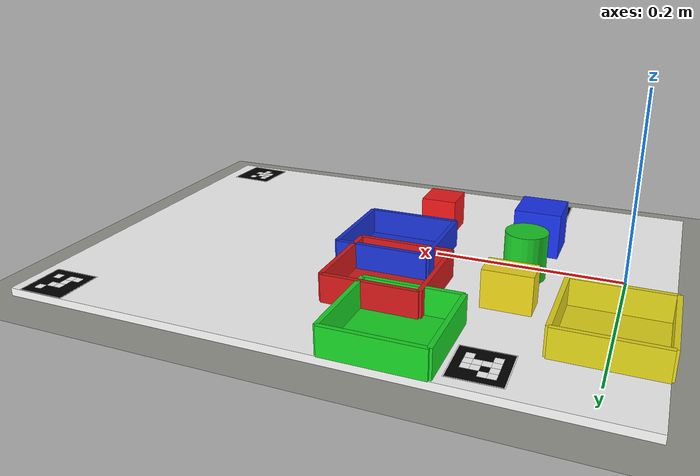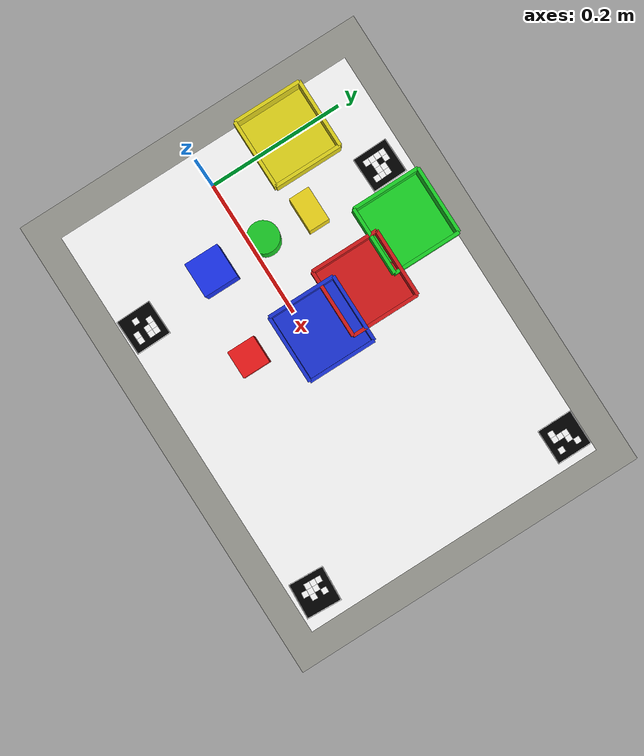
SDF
<?xml version="1.0"?>
<sdf version="1.9">
  <world name="real_table">
    <plugin filename="gz-sim-physics-system" name="gz::sim::systems::Physics" />
    <plugin filename="gz-sim-user-commands-system" name="gz::sim::systems::UserCommands" />
    <plugin filename="gz-sim-scene-broadcaster-system" name="gz::sim::systems::SceneBroadcaster" />
    <!-- The spawned MyCobot URDF loads the shared Sensors system. Loading a
         second instance here creates two Ogre scenes and crashes rendering. -->
    <physics name="default_physics" type="ode">
      <max_step_size>0.001</max_step_size>
      <real_time_factor>1.0</real_time_factor>
    </physics>
    <scene>
      <ambient>0.5 0.5 0.5 1</ambient>
      <background>0.8 0.82 0.85 1</background>
    </scene>
    <light type="directional" name="sun">
      <cast_shadows>true</cast_shadows>
      <pose>0 0 10 0 0 0</pose>
      <diffuse>0.9 0.9 0.85 1</diffuse>
      <specular>0.3 0.3 0.3 1</specular>
      <attenuation>
        <range>1000</range>
        <constant>0.9</constant>
        <linear>0.01</linear>
        <quadratic>0.001</quadratic>
      </attenuation>
      <direction>-0.5 0.3 -0.9</direction>
    </light>
    <light type="directional" name="fill_light">
      <cast_shadows>false</cast_shadows>
      <pose>0 0 8 0 0 0</pose>
      <diffuse>0.4 0.4 0.5 1</diffuse>
      <specular>0.1 0.1 0.1 1</specular>
      <direction>0.5 -0.3 -0.7</direction>
    </light>
    <model name="ground_plane">
      <static>true</static>
      <link name="link">
        <collision name="collision">
          <geometry>
            <plane>
              <normal>0 0 1</normal>
              <size>20 20</size>
            </plane>
          </geometry>
        </collision>
        <visual name="visual">
          <geometry>
            <plane>
              <normal>0 0 1</normal>
              <size>20 20</size>
            </plane>
          </geometry>
          <material>
            <ambient>0.55 0.55 0.52 1</ambient>
            <diffuse>0.6 0.6 0.57 1</diffuse>
          </material>
        </visual>
      </link>
      <pose>0 0 -0.0085 0 0 0</pose>
    </model>
    <!--622 mm along X, 449 mm along Y, 8.5 mm thick. Top Z=0; near edge X=-50 mm.-->
    <model name="table">
      <static>true</static>
      <pose>0.261 0.017 -0.00425 0 0 0</pose>
      <link name="link">
        <visual name="visual">
          <!-- Explicit UVs: the full wood image covers the board once,
               with the grain running along its 622 mm length (+X). -->
          <geometry>
            <mesh>
              <uri>package://mycobot_description/models/wood_table/meshes/tabletop.dae</uri>
            </mesh>
          </geometry>
          <material>
            <ambient>1 1 1 1</ambient>
            <diffuse>1 1 1 1</diffuse>
            <specular>0.08 0.08 0.08 1</specular>
            <pbr>
              <metal>
                <albedo_map>package://mycobot_description/models/wood_table/materials/textures/wood_albedo.png</albedo_map>
                <metalness>0.0</metalness>
                <roughness>0.65</roughness>
              </metal>
            </pbr>
          </material>
        </visual>
        <collision name="collision">
          <geometry>
            <box>
              <size>0.622 0.449 0.0085</size>
            </box>
          </geometry>
          <surface>
            <friction>
              <ode>
                <mu>0.9</mu>
                <mu2>0.9</mu2>
              </ode>
            </friction>
          </surface>
        </collision>
      </link>
    </model>
    <!--Optional physical demo: red cube to red bin, both inside the measured board.-->
    <model name="red_cube">
      <pose>0.22 -0.08 0.020 0 0 0</pose>
      <link name="link">
        <visual name="visual">
          <geometry>
            <box>
              <size>0.04 0.04 0.04</size>
            </box>
          </geometry>
          <material>
            <ambient>0.7 0.05 0.05 1</ambient>
            <diffuse>0.95 0.10 0.10 1</diffuse>
            <specular>0.4 0.1 0.1 1</specular>
          </material>
        </visual>
        <collision name="collision">
          <geometry>
            <box>
              <size>0.04 0.04 0.04</size>
            </box>
          </geometry>
          <surface>
            <friction>
              <ode>
                <mu>1.0</mu>
                <mu2>1.0</mu2>
              </ode>
            </friction>
          </surface>
        </collision>
        <inertial>
          <mass>0.05</mass>
          <inertia>
            <ixx>1.33e-5</ixx>
            <iyy>1.33e-5</iyy>
            <izz>1.33e-5</izz>
            <ixy>0</ixy>
            <ixz>0</ixz>
            <iyz>0</iyz>
          </inertia>
        </inertial>
      </link>
    </model>
    <model name="red_bin">
      <static>true</static>
      <pose>0.22 0.10 0 0 0 0</pose>
      <link name="link">
        <visual name="floor">
          <pose>0 0 0.001 0 0 0</pose>
          <geometry>
            <box>
              <size>0.10 0.10 0.002</size>
            </box>
          </geometry>
          <material>
            <ambient>0.55 0.05 0.05 1</ambient>
            <diffuse>0.85 0.10 0.10 1</diffuse>
          </material>
        </visual>
        <visual name="wn">
          <pose>0 0.05 0.015 0 0 0</pose>
          <geometry>
            <box>
              <size>0.10 0.005 0.03</size>
            </box>
          </geometry>
          <material>
            <ambient>0.55 0.05 0.05 1</ambient>
            <diffuse>0.85 0.10 0.10 1</diffuse>
          </material>
        </visual>
        <visual name="ws">
          <pose>0 -0.05 0.015 0 0 0</pose>
          <geometry>
            <box>
              <size>0.10 0.005 0.03</size>
            </box>
          </geometry>
          <material>
            <ambient>0.55 0.05 0.05 1</ambient>
            <diffuse>0.85 0.10 0.10 1</diffuse>
          </material>
        </visual>
        <visual name="we">
          <pose>0.05 0 0.015 0 0 0</pose>
          <geometry>
            <box>
              <size>0.005 0.10 0.03</size>
            </box>
          </geometry>
          <material>
            <ambient>0.55 0.05 0.05 1</ambient>
            <diffuse>0.85 0.10 0.10 1</diffuse>
          </material>
        </visual>
        <visual name="ww">
          <pose>-0.05 0 0.015 0 0 0</pose>
          <geometry>
            <box>
              <size>0.005 0.10 0.03</size>
            </box>
          </geometry>
          <material>
            <ambient>0.55 0.05 0.05 1</ambient>
            <diffuse>0.85 0.10 0.10 1</diffuse>
          </material>
        </visual>
        <collision name="floor_c">
          <pose>0 0 0.001 0 0 0</pose>
          <geometry>
            <box>
              <size>0.10 0.10 0.002</size>
            </box>
          </geometry>
        </collision>
        <collision name="wn_c">
          <pose>0 0.05 0.015 0 0 0</pose>
          <geometry>
            <box>
              <size>0.10 0.005 0.03</size>
            </box>
          </geometry>
        </collision>
        <collision name="ws_c">
          <pose>0 -0.05 0.015 0 0 0</pose>
          <geometry>
            <box>
              <size>0.10 0.005 0.03</size>
            </box>
          </geometry>
        </collision>
        <collision name="we_c">
          <pose>0.05 0 0.015 0 0 0</pose>
          <geometry>
            <box>
              <size>0.005 0.10 0.03</size>
            </box>
          </geometry>
        </collision>
        <collision name="ww_c">
          <pose>-0.05 0 0.015 0 0 0</pose>
          <geometry>
            <box>
              <size>0.005 0.10 0.03</size>
            </box>
          </geometry>
        </collision>
      </link>
    </model>
    <model name="blue_cube">
      <pose>0.10 -0.06 0.025 0 0 0</pose>
      <link name="link">
        <visual name="visual">
          <geometry>
            <box>
              <size>0.05 0.05 0.05</size>
            </box>
          </geometry>
          <material>
            <ambient>0.05 0.10 0.7 1</ambient>
            <diffuse>0.10 0.20 0.95 1</diffuse>
            <specular>0.1 0.1 0.4 1</specular>
          </material>
        </visual>
        <collision name="collision">
          <geometry>
            <box>
              <size>0.05 0.05 0.05</size>
            </box>
          </geometry>
          <surface>
            <friction>
              <ode>
                <mu>1.0</mu>
                <mu2>1.0</mu2>
              </ode>
            </friction>
          </surface>
        </collision>
        <inertial>
          <mass>0.06</mass>
          <inertia>
            <ixx>2.5e-5</ixx>
            <iyy>2.5e-5</iyy>
            <izz>2.5e-5</izz>
            <ixy>0</ixy>
            <ixz>0</ixz>
            <iyz>0</iyz>
          </inertia>
        </inertial>
      </link>
    </model>
    <model name="green_cylinder">
      <pose>0.10 0.02 0.025 0 0 0</pose>
      <link name="link">
        <visual name="visual">
          <geometry>
            <cylinder>
              <radius>0.022</radius>
              <length>0.05</length>
            </cylinder>
          </geometry>
          <material>
            <ambient>0.05 0.55 0.10 1</ambient>
            <diffuse>0.10 0.80 0.15 1</diffuse>
            <specular>0.1 0.4 0.1 1</specular>
          </material>
        </visual>
        <collision name="collision">
          <geometry>
            <cylinder>
              <radius>0.022</radius>
              <length>0.05</length>
            </cylinder>
          </geometry>
          <surface>
            <friction>
              <ode>
                <mu>1.0</mu>
                <mu2>1.0</mu2>
              </ode>
            </friction>
          </surface>
        </collision>
        <inertial>
          <mass>0.05</mass>
          <inertia>
            <ixx>1.25e-5</ixx>
            <iyy>1.25e-5</iyy>
            <izz>1.21e-5</izz>
            <ixy>0</ixy>
            <ixz>0</ixz>
            <iyz>0</iyz>
          </inertia>
        </inertial>
      </link>
    </model>
    <model name="yellow_box">
      <pose>0.10 0.09 0.020 0 0 0</pose>
      <link name="link">
        <visual name="visual">
          <geometry>
            <box>
              <size>0.05 0.03 0.04</size>
            </box>
          </geometry>
          <material>
            <ambient>0.7 0.6 0.05 1</ambient>
            <diffuse>0.95 0.85 0.10 1</diffuse>
            <specular>0.4 0.4 0.1 1</specular>
          </material>
        </visual>
        <collision name="collision">
          <geometry>
            <box>
              <size>0.05 0.03 0.04</size>
            </box>
          </geometry>
          <surface>
            <friction>
              <ode>
                <mu>1.0</mu>
                <mu2>1.0</mu2>
              </ode>
            </friction>
          </surface>
        </collision>
        <inertial>
          <mass>0.05</mass>
          <inertia>
            <ixx>1.08e-5</ixx>
            <iyy>1.71e-5</iyy>
            <izz>2.04e-5</izz>
            <ixy>0</ixy>
            <ixz>0</ixz>
            <iyz>0</iyz>
          </inertia>
        </inertial>
      </link>
    </model>
    <model name="blue_bin">
      <static>true</static>
      <pose>0.24 0.02 0 0 0 0</pose>
      <link name="link">
        <visual name="floor">
          <pose>0 0 0.001 0 0 0</pose>
          <geometry>
            <box>
              <size>0.10 0.10 0.002</size>
            </box>
          </geometry>
          <material>
            <ambient>0.05 0.10 0.55 1</ambient>
            <diffuse>0.10 0.20 0.85 1</diffuse>
          </material>
        </visual>
        <visual name="wn">
          <pose>0 0.05 0.015 0 0 0</pose>
          <geometry>
            <box>
              <size>0.10 0.005 0.03</size>
            </box>
          </geometry>
          <material>
            <ambient>0.05 0.10 0.55 1</ambient>
            <diffuse>0.10 0.20 0.85 1</diffuse>
          </material>
        </visual>
        <visual name="ws">
          <pose>0 -0.05 0.015 0 0 0</pose>
          <geometry>
            <box>
              <size>0.10 0.005 0.03</size>
            </box>
          </geometry>
          <material>
            <ambient>0.05 0.10 0.55 1</ambient>
            <diffuse>0.10 0.20 0.85 1</diffuse>
          </material>
        </visual>
        <visual name="we">
          <pose>0.05 0 0.015 0 0 0</pose>
          <geometry>
            <box>
              <size>0.005 0.10 0.03</size>
            </box>
          </geometry>
          <material>
            <ambient>0.05 0.10 0.55 1</ambient>
            <diffuse>0.10 0.20 0.85 1</diffuse>
          </material>
        </visual>
        <visual name="ww">
          <pose>-0.05 0 0.015 0 0 0</pose>
          <geometry>
            <box>
              <size>0.005 0.10 0.03</size>
            </box>
          </geometry>
          <material>
            <ambient>0.05 0.10 0.55 1</ambient>
            <diffuse>0.10 0.20 0.85 1</diffuse>
          </material>
        </visual>
        <collision name="floor_c">
          <pose>0 0 0.001 0 0 0</pose>
          <geometry>
            <box>
              <size>0.10 0.10 0.002</size>
            </box>
          </geometry>
        </collision>
        <collision name="wn_c">
          <pose>0 0.05 0.015 0 0 0</pose>
          <geometry>
            <box>
              <size>0.10 0.005 0.03</size>
            </box>
          </geometry>
        </collision>
        <collision name="ws_c">
          <pose>0 -0.05 0.015 0 0 0</pose>
          <geometry>
            <box>
              <size>0.10 0.005 0.03</size>
            </box>
          </geometry>
        </collision>
        <collision name="we_c">
          <pose>0.05 0 0.015 0 0 0</pose>
          <geometry>
            <box>
              <size>0.005 0.10 0.03</size>
            </box>
          </geometry>
        </collision>
        <collision name="ww_c">
          <pose>-0.05 0 0.015 0 0 0</pose>
          <geometry>
            <box>
              <size>0.005 0.10 0.03</size>
            </box>
          </geometry>
        </collision>
      </link>
    </model>
    <model name="green_bin">
      <static>true</static>
      <!-- Repositioned 2026-09-23: original 0.34,-0.04 (r=0.343m) was
           unreachable, see blue_bin's comment above for the same finding. -->
      <pose>0.18 0.19 0 0 0 0</pose>
      <link name="link">
        <visual name="floor">
          <pose>0 0 0.001 0 0 0</pose>
          <geometry>
            <box>
              <size>0.10 0.10 0.002</size>
            </box>
          </geometry>
          <material>
            <ambient>0.05 0.55 0.10 1</ambient>
            <diffuse>0.10 0.85 0.15 1</diffuse>
          </material>
        </visual>
        <visual name="wn">
          <pose>0 0.05 0.015 0 0 0</pose>
          <geometry>
            <box>
              <size>0.10 0.005 0.03</size>
            </box>
          </geometry>
          <material>
            <ambient>0.05 0.55 0.10 1</ambient>
            <diffuse>0.10 0.85 0.15 1</diffuse>
          </material>
        </visual>
        <visual name="ws">
          <pose>0 -0.05 0.015 0 0 0</pose>
          <geometry>
            <box>
              <size>0.10 0.005 0.03</size>
            </box>
          </geometry>
          <material>
            <ambient>0.05 0.55 0.10 1</ambient>
            <diffuse>0.10 0.85 0.15 1</diffuse>
          </material>
        </visual>
        <visual name="we">
          <pose>0.05 0 0.015 0 0 0</pose>
          <geometry>
            <box>
              <size>0.005 0.10 0.03</size>
            </box>
          </geometry>
          <material>
            <ambient>0.05 0.55 0.10 1</ambient>
            <diffuse>0.10 0.85 0.15 1</diffuse>
          </material>
        </visual>
        <visual name="ww">
          <pose>-0.05 0 0.015 0 0 0</pose>
          <geometry>
            <box>
              <size>0.005 0.10 0.03</size>
            </box>
          </geometry>
          <material>
            <ambient>0.05 0.55 0.10 1</ambient>
            <diffuse>0.10 0.85 0.15 1</diffuse>
          </material>
        </visual>
        <collision name="floor_c">
          <pose>0 0 0.001 0 0 0</pose>
          <geometry>
            <box>
              <size>0.10 0.10 0.002</size>
            </box>
          </geometry>
        </collision>
        <collision name="wn_c">
          <pose>0 0.05 0.015 0 0 0</pose>
          <geometry>
            <box>
              <size>0.10 0.005 0.03</size>
            </box>
          </geometry>
        </collision>
        <collision name="ws_c">
          <pose>0 -0.05 0.015 0 0 0</pose>
          <geometry>
            <box>
              <size>0.10 0.005 0.03</size>
            </box>
          </geometry>
        </collision>
        <collision name="we_c">
          <pose>0.05 0 0.015 0 0 0</pose>
          <geometry>
            <box>
              <size>0.005 0.10 0.03</size>
            </box>
          </geometry>
        </collision>
        <collision name="ww_c">
          <pose>-0.05 0 0.015 0 0 0</pose>
          <geometry>
            <box>
              <size>0.005 0.10 0.03</size>
            </box>
          </geometry>
        </collision>
      </link>
    </model>
    <model name="yellow_bin">
      <static>true</static>
      <!-- Repositioned 2026-09-23: original 0.33,-0.17 (r=0.371m) was
           unreachable; see blue_bin's comment above for the same finding. -->
      <pose>0.0 0.12 0 0 0 0</pose>
      <link name="link">
        <visual name="floor">
          <pose>0 0 0.001 0 0 0</pose>
          <geometry>
            <box>
              <size>0.10 0.10 0.002</size>
            </box>
          </geometry>
          <material>
            <ambient>0.55 0.50 0.05 1</ambient>
            <diffuse>0.90 0.85 0.10 1</diffuse>
          </material>
        </visual>
        <visual name="wn">
          <pose>0 0.05 0.015 0 0 0</pose>
          <geometry>
            <box>
              <size>0.10 0.005 0.03</size>
            </box>
          </geometry>
          <material>
            <ambient>0.55 0.50 0.05 1</ambient>
            <diffuse>0.90 0.85 0.10 1</diffuse>
          </material>
        </visual>
        <visual name="ws">
          <pose>0 -0.05 0.015 0 0 0</pose>
          <geometry>
            <box>
              <size>0.10 0.005 0.03</size>
            </box>
          </geometry>
          <material>
            <ambient>0.55 0.50 0.05 1</ambient>
            <diffuse>0.90 0.85 0.10 1</diffuse>
          </material>
        </visual>
        <visual name="we">
          <pose>0.05 0 0.015 0 0 0</pose>
          <geometry>
            <box>
              <size>0.005 0.10 0.03</size>
            </box>
          </geometry>
          <material>
            <ambient>0.55 0.50 0.05 1</ambient>
            <diffuse>0.90 0.85 0.10 1</diffuse>
          </material>
        </visual>
        <visual name="ww">
          <pose>-0.05 0 0.015 0 0 0</pose>
          <geometry>
            <box>
              <size>0.005 0.10 0.03</size>
            </box>
          </geometry>
          <material>
            <ambient>0.55 0.50 0.05 1</ambient>
            <diffuse>0.90 0.85 0.10 1</diffuse>
          </material>
        </visual>
        <collision name="floor_c">
          <pose>0 0 0.001 0 0 0</pose>
          <geometry>
            <box>
              <size>0.10 0.10 0.002</size>
            </box>
          </geometry>
        </collision>
        <collision name="wn_c">
          <pose>0 0.05 0.015 0 0 0</pose>
          <geometry>
            <box>
              <size>0.10 0.005 0.03</size>
            </box>
          </geometry>
        </collision>
        <collision name="ws_c">
          <pose>0 -0.05 0.015 0 0 0</pose>
          <geometry>
            <box>
              <size>0.10 0.005 0.03</size>
            </box>
          </geometry>
        </collision>
        <collision name="we_c">
          <pose>0.05 0 0.015 0 0 0</pose>
          <geometry>
            <box>
              <size>0.005 0.10 0.03</size>
            </box>
          </geometry>
        </collision>
        <collision name="ww_c">
          <pose>-0.05 0 0.015 0 0 0</pose>
          <geometry>
            <box>
              <size>0.005 0.10 0.03</size>
            </box>
          </geometry>
        </collision>
      </link>
    </model>
    <!--Centres: training/calibration/workspace_markers.yaml; orientations: arducam_extrinsic_servo.yaml.-->
    <include>
      <uri>package://mycobot_description/models/aruco_19</uri>
      <name>aruco_19</name>
      <pose>0.0968 0.2034 0 0 0 -1.549547177458</pose>
    </include>
    <include>
      <uri>package://mycobot_description/models/aruco_23</uri>
      <name>aruco_23</name>
      <pose>0.11 -0.179 0 0 0 -1.550472159638</pose>
    </include>
    <include>
      <uri>package://mycobot_description/models/aruco_25</uri>
      <name>aruco_25</name>
      <pose>0.535 0.215 0 0 0 -1.567821028086</pose>
    </include>
    <include>
      <uri>package://mycobot_description/models/aruco_26</uri>
      <name>aruco_26</name>
      <pose>0.53 -0.176 0 0 0 -0.053626108386</pose>
    </include>
    <!--Synthetic overhead camera; calibrated independently from the physical Arducam.-->
    <model name="table_camera">
      <static>true</static>
      <pose>0.261 0.017 0.90 0 1.570796326794897 0</pose>
      <link name="camera_link">
        <sensor name="table_camera" type="camera">
          <always_on>true</always_on>
          <update_rate>10</update_rate>
          <topic>/camera/image_raw</topic>
          <camera>
            <camera_info_topic>/camera/camera_info</camera_info_topic>
            <horizontal_fov>1.05</horizontal_fov>
            <image>
              <width>1280</width>
              <height>960</height>
              <format>R8G8B8</format>
            </image>
            <clip>
              <near>0.02</near>
              <far>3.0</far>
            </clip>
          </camera>
        </sensor>
      </link>
    </model>
  </world>
</sdf>
